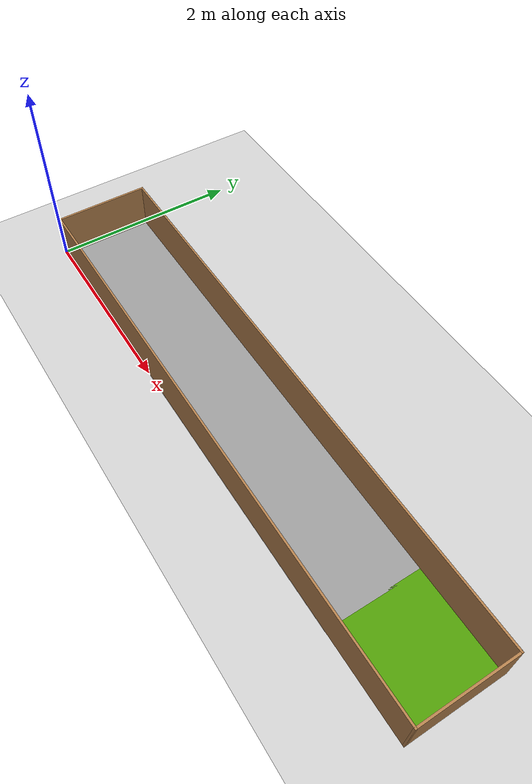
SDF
<sdf version="1.6">
 <world name="default">
  <light name="sun" type="directional">
   <pose>0 0 10 0 -0 0</pose>
   <diffuse>0.8 0.8 0.8 1</diffuse>
   <specular>0.2 0.2 0.2 1</specular>
   <attenuation>
    <range>1000</range>
    <constant>0.9</constant>
    <linear>0.01</linear>
    <quadratic>0.001</quadratic>
   </attenuation>
   <direction>-0.5 0.1 -0.9</direction>
  </light>
  <model name="ground_plane">
   <static>1</static>
   <link name="link">
    <collision name="collision">
     <geometry><plane><normal>0 0 1</normal><size>100 100</size></plane></geometry>
     <surface>
      <contact><collide_bitmask>65535</collide_bitmask></contact>
      <friction><ode><mu>100</mu><mu2>50</mu2></ode></friction>
     </surface>
    </collision>
    <visual name="visual">
     <cast_shadows>0</cast_shadows>
     <geometry><plane><normal>0 0 1</normal><size>100 100</size></plane></geometry>
     <material>
      <script><uri>file://media/materials/scripts/gazebo.material</uri><name>Gazebo/Grey</name></script>
     </material>
    </visual>
   </link>
  </model>
  <gravity>0 0 -9.8</gravity>
  <magnetic_field>6e-06 2.3e-05 -4.2e-05</magnetic_field>
  <atmosphere type="adiabatic"/>
  <physics name="default_physics" default="0" type="ode">
   <max_step_size>0.001</max_step_size>
   <real_time_factor>1</real_time_factor>
   <real_time_update_rate>1000</real_time_update_rate>
  </physics>
  <scene><ambient>0.4 0.4 0.4 1</ambient><background>0.7 0.7 0.7 1</background><shadows>1</shadows></scene>
  <audio><device>default</device></audio>
  <spherical_coordinates>
   <surface_model>EARTH_WGS84</surface_model>
   <latitude_deg>0</latitude_deg>
   <longitude_deg>0</longitude_deg>
   <elevation>0</elevation>
   <heading_deg>0</heading_deg>
  </spherical_coordinates>
  <model name="Motion1">
   <pose>3.01923 0.499079 0 0 -0 0</pose>
   <link name="Wall_0">
    <collision name="Wall_0_Collision">
     <geometry><box><size>1 0.02 0.5</size></box></geometry>
     <pose>0 0 0.25 0 -0 0</pose>
    </collision>
    <visual name="Wall_0_Visual">
     <pose>0 0 0.25 0 -0 0</pose>
     <geometry><box><size>1 0.02 0.5</size></box></geometry>
     <material>
      <script><uri>file://media/materials/scripts/gazebo.material</uri><name>Gazebo/Wood</name></script>
      <ambient>1 1 1 1</ambient>
     </material>
     <meta><layer>0</layer></meta>
    </visual>
    <pose>-2.99098 -0.000359 0 0 -0 -1.5708</pose>
   </link>
   <link name="Wall_10">
    <collision name="Wall_10_Collision">
     <geometry><box><size>5 1 0.001</size></box></geometry>
     <pose>0 0 0.0005 0 -0 0</pose>
    </collision>
    <visual name="Wall_10_Visual">
     <pose>0 0 0.0005 0 -0 0</pose>
     <geometry><box><size>5 1 0.001</size></box></geometry>
     <material>
      <script><uri>file://media/materials/scripts/gazebo.material</uri><name>Gazebo/Grey</name></script>
      <ambient>0.827451 0.843137 0.811765 1</ambient>
     </material>
     <meta><layer>0</layer></meta>
    </visual>
    <pose>-0.497173 -0.001295 0 0 -0 0</pose>
   </link>
   <link name="Wall_12">
    <collision name="Wall_12_Collision">
     <geometry><box><size>1.01 1 0.001</size></box></geometry>
     <pose>0 0 0.0005 0 -0 0</pose>
    </collision>
    <visual name="Wall_12_Visual">
     <pose>0 0 0.0005 0 -0 0</pose>
     <geometry><box><size>1.01 1 0.001</size></box></geometry>
     <material>
      <script><uri>file://media/materials/scripts/gazebo.material</uri><name>Gazebo/Grey</name></script>
      <ambient>0.305882 0.603922 0.0235294 1</ambient>
     </material>
     <meta><layer>0</layer></meta>
    </visual>
    <pose>2.49038 0.001295 0 0 -0 0</pose>
   </link>
   <link name="Wall_2">
    <collision name="Wall_2_Collision">
     <geometry><box><size>6 0.02 0.5</size></box></geometry>
     <pose>0 0 0.25 0 -0 0</pose>
    </collision>
    <visual name="Wall_2_Visual">
     <pose>0 0 0.25 0 -0 0</pose>
     <geometry><box><size>6 0.02 0.5</size></box></geometry>
     <material>
      <script><uri>file://media/materials/scripts/gazebo.material</uri><name>Gazebo/Wood</name></script>
      <ambient>1 1 1 1</ambient>
     </material>
     <meta><layer>0</layer></meta>
    </visual>
    <pose>0.000982 -0.489145 0 0 -0 0</pose>
   </link>
   <link name="Wall_4">
    <collision name="Wall_4_Collision">
     <geometry><box><size>6 0.02 0.5</size></box></geometry>
     <pose>0 0 0.25 0 -0 0</pose>
    </collision>
    <visual name="Wall_4_Visual">
     <pose>0 0 0.25 0 -0 0</pose>
     <geometry><box><size>6 0.02 0.5</size></box></geometry>
     <material>
      <script><uri>file://media/materials/scripts/gazebo.material</uri><name>Gazebo/Wood</name></script>
      <ambient>1 1 1 1</ambient>
     </material>
     <meta><layer>0</layer></meta>
    </visual>
    <pose>-0.000878 0.490444 0 0 -0 0</pose>
   </link>
   <link name="Wall_6">
    <collision name="Wall_6_Collision">
     <geometry><box><size>1 0.02 0.5</size></box></geometry>
     <pose>0 0 0.25 0 -0 0</pose>
    </collision>
    <visual name="Wall_6_Visual">
     <pose>0 0 0.25 0 -0 0</pose>
     <geometry><box><size>1 0.02 0.5</size></box></geometry>
     <material>
      <script><uri>file://media/materials/scripts/gazebo.material</uri><name>Gazebo/Wood</name></script>
      <ambient>1 1 1 1</ambient>
     </material>
     <meta><layer>0</layer></meta>
    </visual>
    <pose>2.99054 0.000632 0 0 -0 -1.5708</pose>
   </link>
   <static>1</static>
  </model>
 </world>
</sdf>
